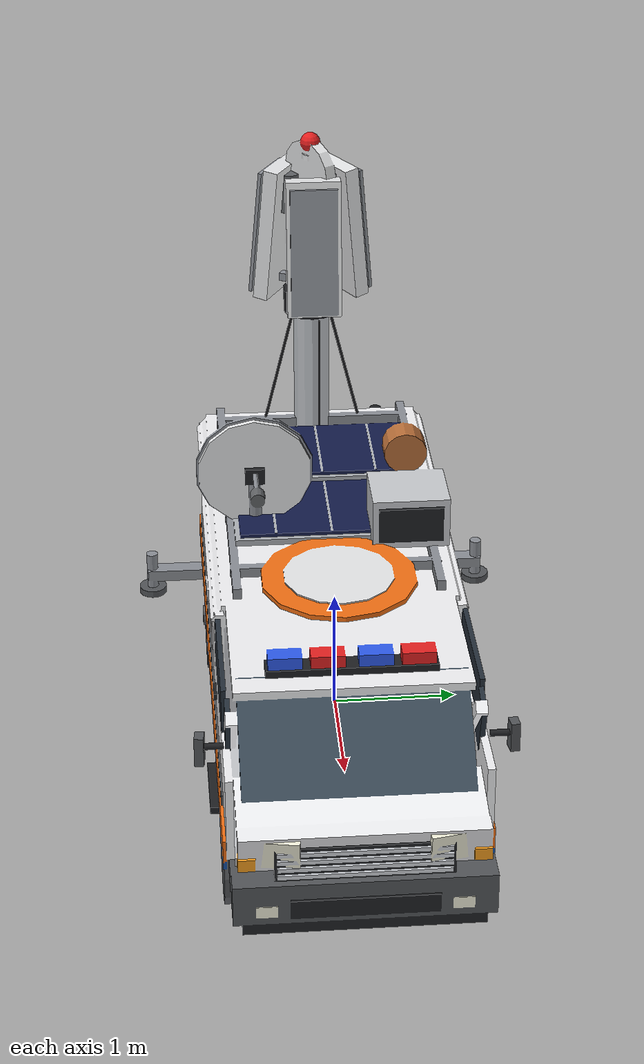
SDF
<?xml version="1.0"?>
<sdf version="1.7">
  <model name="fiveg_base_station">
    <static>true</static>
    <link name="body">
      <visual name="v">
        <geometry><mesh><uri>model://fiveg_base_station/meshes/mesh.dae</uri></mesh></geometry>
      </visual>
    </link>
  </model>
</sdf>
